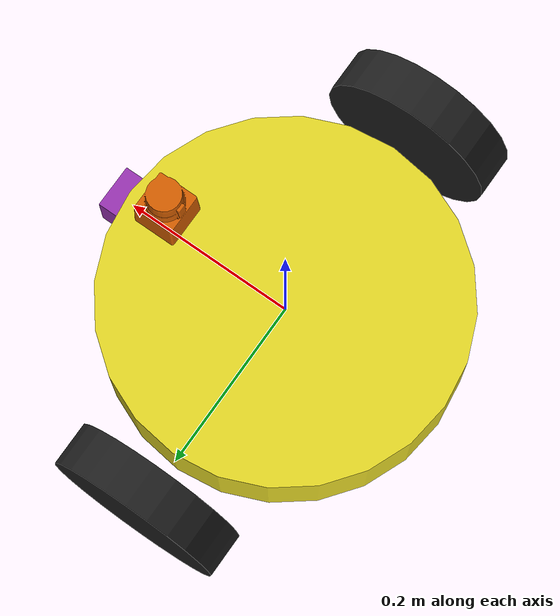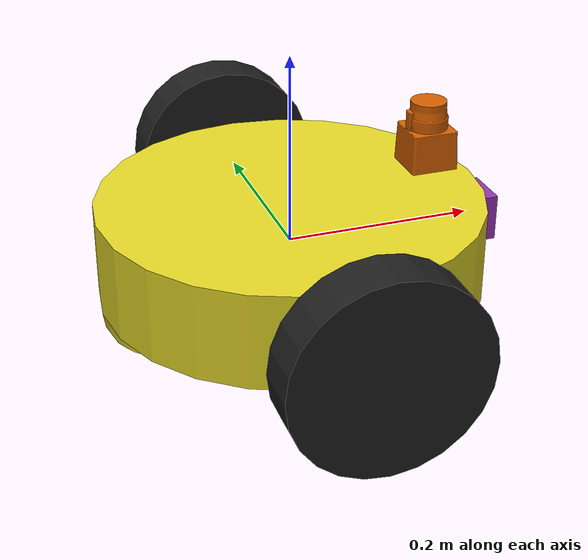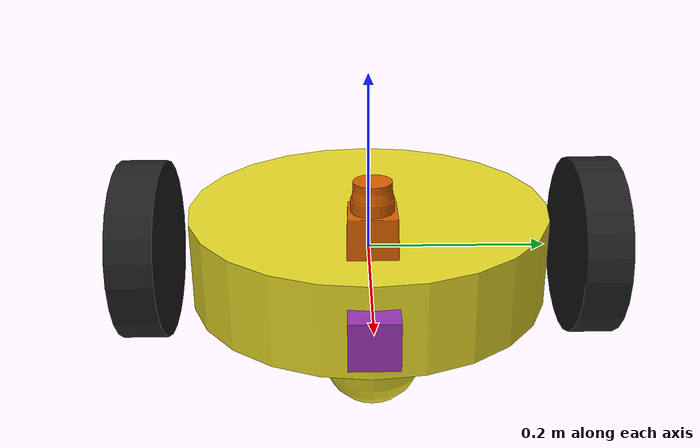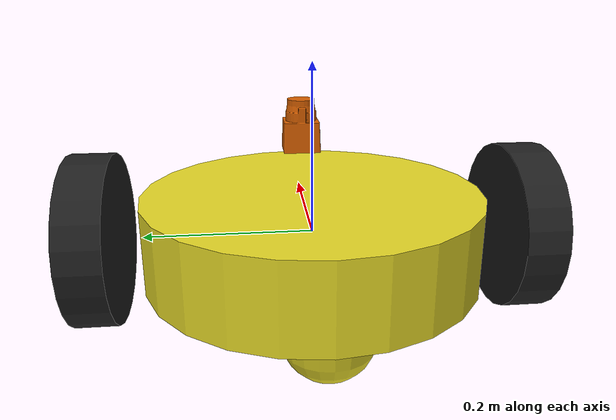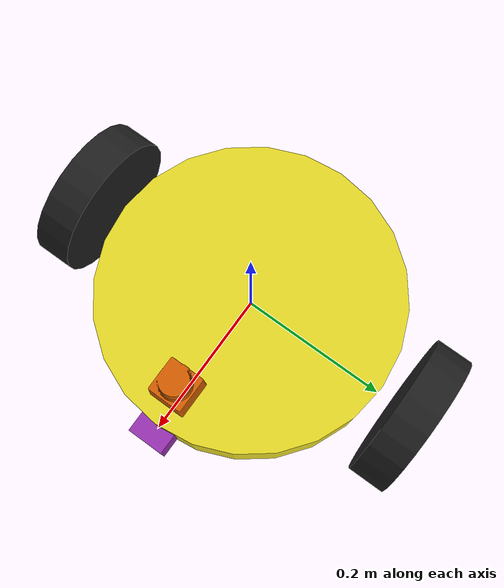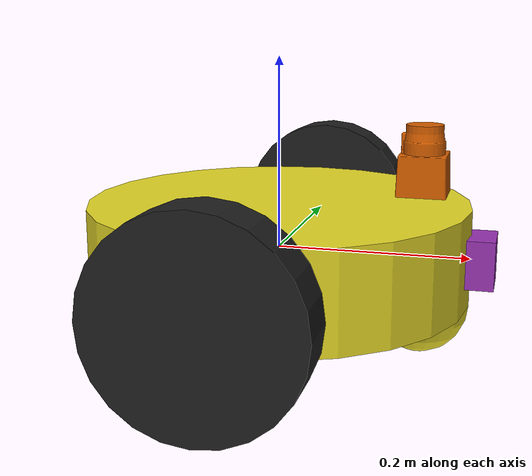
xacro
<?xml version='1.0'?>

<robot name="my_robot" xmlns:xacro="http://www.ros.org/wiki/xacro">
  <xacro:include filename="$(find my_robot)/urdf/my_robot.gazebo" />
  <link name="robot_footprint"></link>

  <joint name="robot_footprint_joint" type="fixed">
    <origin xyz="0 0 0" rpy="0 0 0" />
    <parent link="robot_footprint"/>
    <child link="chassis" />
  </joint>

  <link name='chassis'>
    <pose>0 0 0.1 0 0 0</pose>

    <inertial>
      <mass value="15.0"/>
      <origin xyz="0.0 0 0" rpy=" 0 0 0"/>
      <inertia
          ixx="0.1" ixy="0" ixz="0"
          iyy="0.1" iyz="0"
          izz="0.1"
      />
    </inertial>

    <collision name='collision'>
      <origin xyz="0 0 0" rpy=" 0 0 0"/>
      <geometry>
        <cylinder radius="0.2" length="0.1" />
      </geometry>
    </collision>

    <visual name='chassis_visual'>
      <origin xyz="0 0 0" rpy=" 0 0 0"/>
      <geometry>
        <cylinder radius="0.2" length="0.1" />
      </geometry>
    </visual>

    <collision name='back_caster_collision'>
      <origin xyz="-0.15 0 -0.05" rpy=" 0 0 0"/>
      <geometry>
        <sphere radius="0.0499"/>
      </geometry>
    </collision>

    <visual name='back_caster_visual'>
      <origin xyz="-0.15 0 -0.05" rpy=" 0 0 0"/>
      <geometry>
        <sphere radius="0.05"/>
      </geometry>
    </visual>

    <collision name='front_caster_collision'>
      <origin xyz="0.15 0 -0.05" rpy=" 0 0 0"/>
      <geometry>
        <sphere radius="0.0499"/>
      </geometry>
    </collision>

    <visual name='front_caster_visual'>
      <origin xyz="0.15 0 -0.05" rpy=" 0 0 0"/>
      <geometry>
        <sphere radius="0.05"/>
      </geometry>
    </visual>

  </link>

<gazebo reference="chassis">
    <material>Gazebo/Yellow</material>
</gazebo>

<link name='left_wheel'>
    <pose>0 0 0.0 0 0 0</pose>

    <inertial>
      <mass value="5.0"/>
      <origin xyz="0.0 0 0" rpy=" 0 0 0"/>
      <inertia
          ixx="0.1" ixy="0" ixz="0"
          iyy="0.1" iyz="0"
          izz="0.1"
      />
    </inertial>

    <visual name='left_wheel_visual'>
      <origin xyz="0 0 0" rpy="0 1.5707 1.5707"/>
      <geometry>
          <cylinder radius="0.1" length="0.05" />
      </geometry>
    </visual>

    <collision name='collision'>
      <origin xyz="0 0 0" rpy="0 1.5707 1.5707"/>
      <geometry>
        <cylinder radius="0.1" length="0.05" />
      </geometry>
    </collision>
</link>

<gazebo reference="left_wheel">
    <material>Gazebo/Black</material>
</gazebo>

<link name='right_wheel'>
    <pose>0 0 0.0 0 0 0</pose>

    <inertial>
      <mass value="5.0"/>
      <origin xyz="0.0 0 0" rpy="0 0 0"/>
      <inertia
          ixx="0.1" ixy="0" ixz="0"
          iyy="0.1" iyz="0"
          izz="0.1"
      />
    </inertial>

    <visual name='right_wheel_visual'>
      <origin xyz="0 0 0" rpy="0 1.5707 1.5707"/>
      <geometry>
         <cylinder radius="0.1" length="0.05" />
      </geometry>
    </visual>

    <collision name='collision'>
      <origin xyz="0 0 0" rpy="0 1.5707 1.5707"/>
      <geometry>
        <cylinder radius="0.1" length="0.05" />
      </geometry>
    </collision>
  </link>

<gazebo reference="right_wheel">
    <material>Gazebo/Black</material>
</gazebo>

 <joint type="continuous" name="left_wheel_hinge">
    <origin xyz="0 0.25 0" rpy="0 0 0"/>
    <child link="left_wheel"/>
    <parent link="chassis"/>
    <axis xyz="0 1 0" rpy="0 0 0"/>
    <limit effort="10000" velocity="1000"/>
    <dynamics damping="1.0" friction="1.0"/>
  </joint>

 <joint type="continuous" name="right_wheel_hinge">
    <origin xyz="0 -0.25 0" rpy="0 0 0"/>
    <child link="right_wheel"/>
    <parent link="chassis"/>
    <axis xyz="0 1 0" rpy="0 0 0"/>
    <limit effort="10000" velocity="1000"/>
    <dynamics damping="1.0" friction="1.0"/>
  </joint>

<link name='camera_link'>
    <pose>0 0 0.0 0 0 0</pose>

    <inertial>
      <mass value="0.1"/>
      <origin xyz="0.0 0 0" rpy="0 0 0"/>
      <inertia
          ixx="1e-6" ixy="0" ixz="0"
          iyy="1e-6" iyz="0"
          izz="1e-6"
      />
    </inertial>

    <visual name='camera_visual'>
      <origin xyz="0 0 0" rpy=" 0 0 0"/>
      <geometry>
         <box size=".05 .05 .05"/>
      </geometry>
    </visual>

    <collision name='collision'>
      <origin xyz="0 0 0" rpy=" 0 0 0"/>
      <geometry>
        <box size=".05 .05 .05"/>
      </geometry>
    </collision>
  </link>

<gazebo reference="camera_link">
    <material>Gazebo/Purple</material>
</gazebo>

 <joint type="fixed" name="camera_joint">
    <origin xyz="0.2 0.0 0" rpy="0 0 0"/>
    <child link="camera_link"/>
    <parent link="chassis"/>
    <axis xyz="0 1 0" rpy="0 0 0"/>
    <limit effort="10000" velocity="1000"/>
    <dynamics damping="1.0" friction="1.0"/>
  </joint>

<link name='hokuyo'>
    <pose>0 0 0.0 0 0 0</pose>

    <inertial>
      <mass value="1e-5"/>
      <origin xyz="0.0 0 0" rpy="0 0 0"/>
      <inertia
          ixx="1e-6" ixy="0" ixz="0"
          iyy="1e-6" iyz="0"
          izz="1e-6"
      />
    </inertial>

    <visual name='visual'>
      <origin xyz="0 0 0" rpy=" 0 0 0"/>
      <geometry>
        <mesh filename="package://my_robot/meshes/hokuyo.dae"/>
      </geometry>
    </visual>
  </link>

 <joint type="fixed" name="hokuyo_joint">
    <origin xyz="0.15 0.0 0.1" rpy="0 0 0"/>
    <child link="hokuyo"/>
    <parent link="chassis"/>
    <axis xyz="0 1 0" rpy="0 0 0"/>
    <limit effort="10000" velocity="1000"/>
    <dynamics damping="1.0" friction="1.0"/>
  </joint>

<joint name="camera_optical_joint" type="fixed">
    <origin xyz="0 0 0" rpy="-1.5707 0 -1.5707"/>
    <parent link="camera_link"/>
    <child link="camera_link_optical"/>
  </joint>

  <link name="camera_link_optical">
  </link>
</robot>
